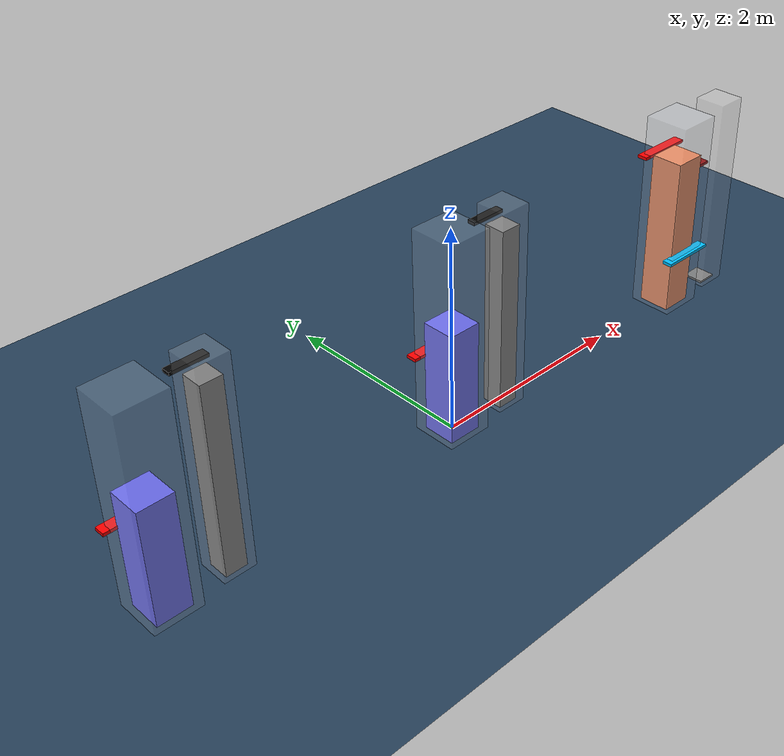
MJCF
<mujoco model="room heating P-control visualization">

  <statistic extent="4" center="0.5 0 1"/>

  <visual>
    <rgba haze="0.15 0.25 0.35 1"/>
    <quality shadowsize="4096"/>
    <global azimuth="120" elevation="-20"/>
  </visual>

  <asset>
    <texture type="skybox" builtin="gradient" rgb1="0.3 0.5 0.7" rgb2="0 0 0" width="512" height="3072"/>
    <texture type="2d" name="groundplane" builtin="checker" mark="edge" rgb1="0.2 0.3 0.4" rgb2="0.1 0.2 0.3"
      markrgb="0.8 0.8 0.8" width="300" height="300"/>
    <material name="groundplane" texture="groundplane" texuniform="true" texrepeat="5 5" reflectance="0.2"/>
  </asset>

  <worldbody>
    <light pos="0 0 4"/>
    <light pos="0 -3 3" dir="0 0.6 -1" directional="true"/>
    <geom name="floor" pos="0 0 0" size="0 0 0.05" type="plane" material="groundplane"/>

    <!-- ============ Room 1 | Kp = 1500 (weak gain) ============ -->
    <body name="Room1_Kp1500_weak" pos="-3 0 0">
      <geom name="r1_tube" type="box" size="0.22 0.22 1.0" pos="0 0 1.0"
            rgba="0.85 0.9 0.95 0.12" contype="0" conaffinity="0"/>
      <geom name="r1_fill" type="box" size="0.16 0.16 0.55" pos="0 0 0.55"
            rgba="0.4 0.4 1 1" contype="0" conaffinity="0"/>
      <geom name="r1_setpoint" type="box" size="0.28 0.05 0.015" pos="0 0.2 0.775"
            rgba="1 0 0 1" contype="0" conaffinity="0"/>

      <geom name="r1_heater_tube" type="box" size="0.15 0.15 1.0" pos="0.6 0 1.0"
            rgba="0.9 0.9 0.9 0.12" contype="0" conaffinity="0"/>
      <geom name="r1_heater_fill" type="box" size="0.1 0.1 0.9" pos="0.6 0 0.9"
            rgba="0.5 0.5 0.5 1" contype="0" conaffinity="0"/>
      <geom name="r1_heater_cap" type="box" size="0.17 0.04 0.015" pos="0.6 0.2 1.8"
            rgba="0 0 0 1" contype="0" conaffinity="0"/>
    </body>

    <!-- ============ Room 2 | Kp = 6000 (strong gain) ============ -->
    <body name="Room2_Kp6000_strong" pos="0 0 0">
      <geom name="r2_tube" type="box" size="0.22 0.22 1.0" pos="0 0 1.0"
            rgba="0.85 0.9 0.95 0.12" contype="0" conaffinity="0"/>
      <geom name="r2_fill" type="box" size="0.16 0.16 0.55" pos="0 0 0.55"
            rgba="0.4 0.4 1 1" contype="0" conaffinity="0"/>
      <geom name="r2_setpoint" type="box" size="0.28 0.05 0.015" pos="0 0.2 0.775"
            rgba="1 0 0 1" contype="0" conaffinity="0"/>

      <geom name="r2_heater_tube" type="box" size="0.15 0.15 1.0" pos="0.6 0 1.0"
            rgba="0.9 0.9 0.9 0.12" contype="0" conaffinity="0"/>
      <geom name="r2_heater_fill" type="box" size="0.1 0.1 0.9" pos="0.6 0 0.9"
            rgba="0.5 0.5 0.5 1" contype="0" conaffinity="0"/>
      <geom name="r2_heater_cap" type="box" size="0.17 0.04 0.015" pos="0.6 0.2 1.8"
            rgba="0 0 0 1" contype="0" conaffinity="0"/>
    </body>

    <!-- ============ Room 3 | Kp = 6000, undersized 6kW heater + cold front ============ -->
    <body name="Room3_Kp6000_6kWheater" pos="3 0 0">
      <geom name="r3_tube" type="box" size="0.22 0.22 1.0" pos="0 0 1.0"
            rgba="0.85 0.9 0.95 0.12" contype="0" conaffinity="0"/>
      <geom name="r3_fill" type="box" size="0.16 0.16 0.8" pos="0 0 0.8"
            rgba="1 0.55 0.35 1" contype="0" conaffinity="0"/>
      <geom name="r3_setpoint" type="box" size="0.28 0.05 0.015" pos="0 0.2 1.6"
            rgba="1 0 0 1" contype="0" conaffinity="0"/>
      <geom name="r3_outside" type="box" size="0.28 0.05 0.015" pos="0 -0.2 0.6"
            rgba="0.0 0.75 1 1" contype="0" conaffinity="0"/>

      <geom name="r3_heater_tube" type="box" size="0.15 0.15 1.0" pos="0.6 0 1.0"
            rgba="0.9 0.9 0.9 0.12" contype="0" conaffinity="0"/>
      <geom name="r3_heater_fill" type="box" size="0.1 0.1 0.01" pos="0.6 0 0.01"
            rgba="0.5 0.5 0.5 1" contype="0" conaffinity="0"/>
      <geom name="r3_heater_cap" type="box" size="0.17 0.04 0.015" pos="0.6 0.2 1.2"
            rgba="0.6 0 0 1" contype="0" conaffinity="0"/>
    </body>

  </worldbody>
</mujoco>
